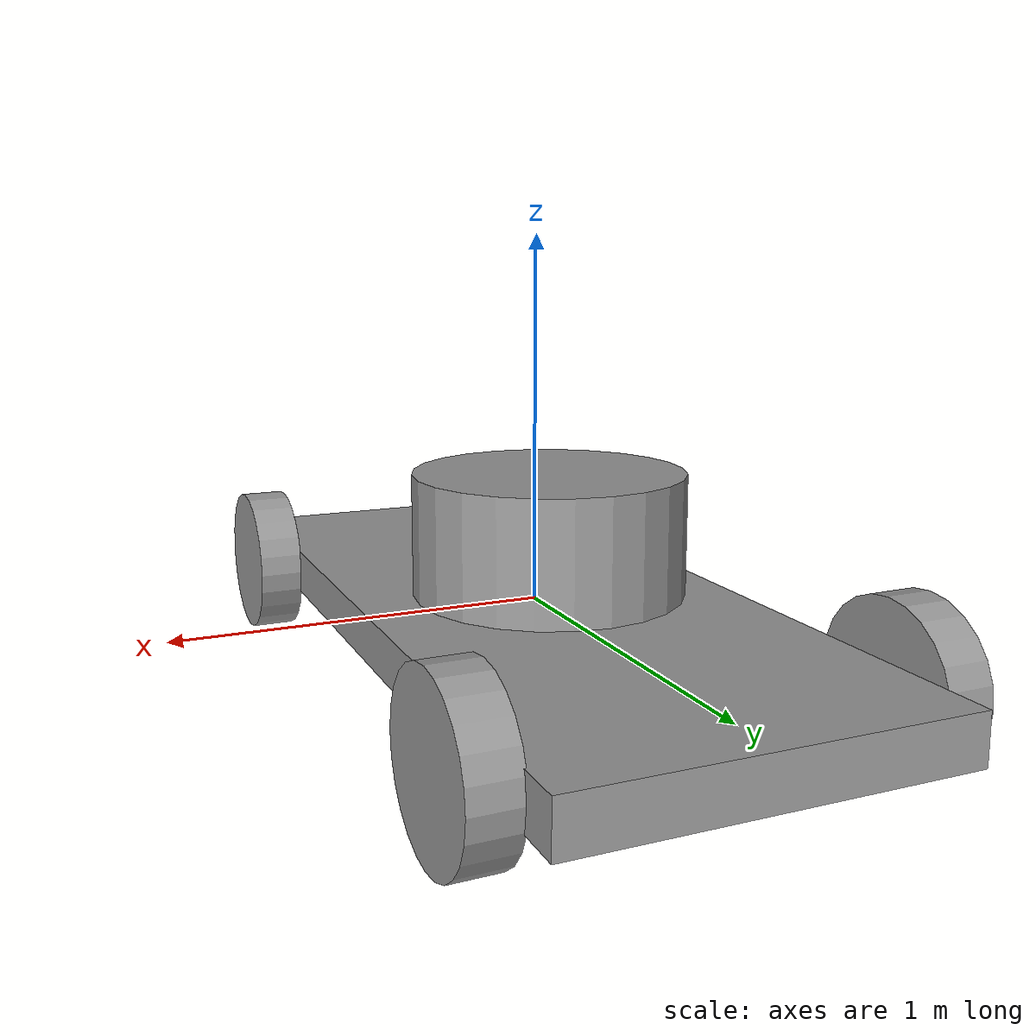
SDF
<?xml version='1.0'?>
<sdf version='1.5'>
  <model name='bfl_5_lid'>
    <link name='link_0'>
      <inertial>
        <mass>0.309481</mass>
        <inertia>
          <ixx>0.148031</ixx>
          <ixy>0</ixy>
          <ixz>0</ixz>
          <iyy>0.0262218</iyy>
          <iyz>0</iyz>
          <izz>0.17339</izz>
        </inertia>
        <pose>0 0 0 0 -0 0</pose>
      </inertial>
      <pose>0.005955 -0.002255 -0.04012 0 -0 0</pose>
      <visual name='visual'>
        <pose>0 0 0 0 -0 0</pose>
        <geometry>
          <box>
            <size>1 2.3923 0.129378</size>
          </box>
        </geometry>
        <material>
          <lighting>1</lighting>
          <script>
            <uri>file://media/materials/scripts/gazebo.material</uri>
            <name>Gazebo/Grey</name>
          </script>
          <shader type='pixel'/>
          <emissive>0 0 0 1</emissive>
        </material>
        <transparency>0</transparency>
        <cast_shadows>1</cast_shadows>
      </visual>
      <collision name='collision'>
        <laser_retro>0</laser_retro>
        <max_contacts>10</max_contacts>
        <pose>0 0 0 0 -0 0</pose>
        <geometry>
          <box>
            <size>1 2.3923 0.129378</size>
          </box>
        </geometry>
        <surface>
          <friction>
            <ode>
              <mu>1</mu>
              <mu2>1</mu2>
              <fdir1>0 0 0</fdir1>
              <slip1>0</slip1>
              <slip2>0</slip2>
            </ode>
            <torsional>
              <coefficient>1</coefficient>
              <patch_radius>0</patch_radius>
              <surface_radius>0</surface_radius>
              <use_patch_radius>1</use_patch_radius>
              <ode>
                <slip>0</slip>
              </ode>
            </torsional>
          </friction>
          <bounce>
            <restitution_coefficient>0</restitution_coefficient>
            <threshold>1e+06</threshold>
          </bounce>
          <contact>
            <collide_without_contact>0</collide_without_contact>
            <collide_without_contact_bitmask>1</collide_without_contact_bitmask>
            <collide_bitmask>1</collide_bitmask>
            <ode>
              <soft_cfm>0</soft_cfm>
              <soft_erp>0.2</soft_erp>
              <kp>1e+13</kp>
              <kd>1</kd>
              <max_vel>0.01</max_vel>
              <min_depth>0</min_depth>
            </ode>
            <bullet>
              <split_impulse>1</split_impulse>
              <split_impulse_penetration_threshold>-0.01</split_impulse_penetration_threshold>
              <soft_cfm>0</soft_cfm>
              <soft_erp>0.2</soft_erp>
              <kp>1e+13</kp>
              <kd>1</kd>
            </bullet>
          </contact>
        </surface>
      </collision>
    </link>
    <link name='link_1'>
      <inertial>
        <mass>0.0232297</mass>
        <inertia>
          <ixx>0.000300218</ixx>
          <ixy>0</ixy>
          <ixz>0</ixz>
          <iyy>0.000300218</iyy>
          <iyz>0</iyz>
          <izz>0.000540024</izz>
        </inertia>
        <pose>0 0 0 0 -0 0</pose>
      </inertial>
      <pose>-0.562429 -0.881252 -0.040123 -1.57101 -0.016559 -1.55771</pose>
      <visual name='visual'>
        <pose>0 0 0 0 -0 0</pose>
        <geometry>
          <cylinder>
            <radius>0.215626</radius>
            <length>0.124916</length>
          </cylinder>
        </geometry>
        <material>
          <lighting>1</lighting>
          <script>
            <uri>file://media/materials/scripts/gazebo.material</uri>
            <name>Gazebo/Grey</name>
          </script>
          <shader type='pixel'/>
          <emissive>0 0 0 1</emissive>
        </material>
        <transparency>0</transparency>
        <cast_shadows>1</cast_shadows>
      </visual>
      <collision name='collision'>
        <laser_retro>0</laser_retro>
        <max_contacts>10</max_contacts>
        <pose>0 0 0 0 -0 0</pose>
        <geometry>
          <cylinder>
            <radius>0.215626</radius>
            <length>0.124916</length>
          </cylinder>
        </geometry>
        <surface>
          <friction>
            <ode>
              <mu>1</mu>
              <mu2>1</mu2>
              <fdir1>0 0 0</fdir1>
              <slip1>0</slip1>
              <slip2>0</slip2>
            </ode>
            <torsional>
              <coefficient>1</coefficient>
              <patch_radius>0</patch_radius>
              <surface_radius>0</surface_radius>
              <use_patch_radius>1</use_patch_radius>
              <ode>
                <slip>0</slip>
              </ode>
            </torsional>
          </friction>
          <bounce>
            <restitution_coefficient>0</restitution_coefficient>
            <threshold>1e+06</threshold>
          </bounce>
          <contact>
            <collide_without_contact>0</collide_without_contact>
            <collide_without_contact_bitmask>1</collide_without_contact_bitmask>
            <collide_bitmask>1</collide_bitmask>
            <ode>
              <soft_cfm>0</soft_cfm>
              <soft_erp>0.2</soft_erp>
              <kp>1e+13</kp>
              <kd>1</kd>
              <max_vel>0.01</max_vel>
              <min_depth>0</min_depth>
            </ode>
            <bullet>
              <split_impulse>1</split_impulse>
              <split_impulse_penetration_threshold>-0.01</split_impulse_penetration_threshold>
              <soft_cfm>0</soft_cfm>
              <soft_erp>0.2</soft_erp>
              <kp>1e+13</kp>
              <kd>1</kd>
            </bullet>
          </contact>
        </surface>
      </collision>
    </link>
    <link name='link_1_clone'>
      <inertial>
        <mass>0.0232297</mass>
        <inertia>
          <ixx>0.000300218</ixx>
          <ixy>0</ixy>
          <ixz>0</ixz>
          <iyy>0.000300218</iyy>
          <iyz>0</iyz>
          <izz>0.000540024</izz>
        </inertia>
        <pose>0 0 0 0 -0 0</pose>
      </inertial>
      <pose>-0.560979 0.855765 -0.040126 -1.57101 -0.016559 -1.55771</pose>
      <visual name='visual'>
        <pose>0 0 0 0 -0 0</pose>
        <geometry>
          <cylinder>
            <radius>0.215626</radius>
            <length>0.124916</length>
          </cylinder>
        </geometry>
        <material>
          <lighting>1</lighting>
          <script>
            <uri>file://media/materials/scripts/gazebo.material</uri>
            <name>Gazebo/Grey</name>
          </script>
          <shader type='pixel'/>
          <emissive>0 0 0 1</emissive>
        </material>
        <transparency>0</transparency>
        <cast_shadows>1</cast_shadows>
      </visual>
      <collision name='collision'>
        <laser_retro>0</laser_retro>
        <max_contacts>10</max_contacts>
        <pose>0 0 0 0 -0 0</pose>
        <geometry>
          <cylinder>
            <radius>0.215626</radius>
            <length>0.124916</length>
          </cylinder>
        </geometry>
        <surface>
          <friction>
            <ode>
              <mu>1</mu>
              <mu2>1</mu2>
              <fdir1>0 0 0</fdir1>
              <slip1>0</slip1>
              <slip2>0</slip2>
            </ode>
            <torsional>
              <coefficient>1</coefficient>
              <patch_radius>0</patch_radius>
              <surface_radius>0</surface_radius>
              <use_patch_radius>1</use_patch_radius>
              <ode>
                <slip>0</slip>
              </ode>
            </torsional>
          </friction>
          <bounce>
            <restitution_coefficient>0</restitution_coefficient>
            <threshold>1e+06</threshold>
          </bounce>
          <contact>
            <collide_without_contact>0</collide_without_contact>
            <collide_without_contact_bitmask>1</collide_without_contact_bitmask>
            <collide_bitmask>1</collide_bitmask>
            <ode>
              <soft_cfm>0</soft_cfm>
              <soft_erp>0.2</soft_erp>
              <kp>1e+13</kp>
              <kd>1</kd>
              <max_vel>0.01</max_vel>
              <min_depth>0</min_depth>
            </ode>
            <bullet>
              <split_impulse>1</split_impulse>
              <split_impulse_penetration_threshold>-0.01</split_impulse_penetration_threshold>
              <soft_cfm>0</soft_cfm>
              <soft_erp>0.2</soft_erp>
              <kp>1e+13</kp>
              <kd>1</kd>
            </bullet>
          </contact>
        </surface>
      </collision>
    </link>
    <link name='link_1_clone_0'>
      <inertial>
        <mass>0.0232297</mass>
        <inertia>
          <ixx>0.000300218</ixx>
          <ixy>0</ixy>
          <ixz>0</ixz>
          <iyy>0.000300218</iyy>
          <iyz>0</iyz>
          <izz>0.000540024</izz>
        </inertia>
        <pose>0 0 0 0 -0 0</pose>
      </inertial>
      <pose>0.565901 0.870251 -0.041786 -1.57101 -0.016559 -1.55771</pose>
      <visual name='visual'>
        <pose>0 0 0 0 -0 0</pose>
        <geometry>
          <cylinder>
            <radius>0.215626</radius>
            <length>0.124916</length>
          </cylinder>
        </geometry>
        <material>
          <lighting>1</lighting>
          <script>
            <uri>file://media/materials/scripts/gazebo.material</uri>
            <name>Gazebo/Grey</name>
          </script>
          <shader type='pixel'/>
          <emissive>0 0 0 1</emissive>
        </material>
        <transparency>0</transparency>
        <cast_shadows>1</cast_shadows>
      </visual>
      <collision name='collision'>
        <laser_retro>0</laser_retro>
        <max_contacts>10</max_contacts>
        <pose>0 0 0 0 -0 0</pose>
        <geometry>
          <cylinder>
            <radius>0.215626</radius>
            <length>0.124916</length>
          </cylinder>
        </geometry>
        <surface>
          <friction>
            <ode>
              <mu>1</mu>
              <mu2>1</mu2>
              <fdir1>0 0 0</fdir1>
              <slip1>0</slip1>
              <slip2>0</slip2>
            </ode>
            <torsional>
              <coefficient>1</coefficient>
              <patch_radius>0</patch_radius>
              <surface_radius>0</surface_radius>
              <use_patch_radius>1</use_patch_radius>
              <ode>
                <slip>0</slip>
              </ode>
            </torsional>
          </friction>
          <bounce>
            <restitution_coefficient>0</restitution_coefficient>
            <threshold>1e+06</threshold>
          </bounce>
          <contact>
            <collide_without_contact>0</collide_without_contact>
            <collide_without_contact_bitmask>1</collide_without_contact_bitmask>
            <collide_bitmask>1</collide_bitmask>
            <ode>
              <soft_cfm>0</soft_cfm>
              <soft_erp>0.2</soft_erp>
              <kp>1e+13</kp>
              <kd>1</kd>
              <max_vel>0.01</max_vel>
              <min_depth>0</min_depth>
            </ode>
            <bullet>
              <split_impulse>1</split_impulse>
              <split_impulse_penetration_threshold>-0.01</split_impulse_penetration_threshold>
              <soft_cfm>0</soft_cfm>
              <soft_erp>0.2</soft_erp>
              <kp>1e+13</kp>
              <kd>1</kd>
            </bullet>
          </contact>
        </surface>
      </collision>
    </link>
    <link name='link_1_clone_1'>
      <inertial>
        <mass>0.0232297</mass>
        <inertia>
          <ixx>0.000300218</ixx>
          <ixy>0</ixy>
          <ixz>0</ixz>
          <iyy>0.000300218</iyy>
          <iyz>0</iyz>
          <izz>0.000540024</izz>
        </inertia>
        <pose>0 0 0 0 -0 0</pose>
      </inertial>
      <pose>0.569438 -0.891527 -0.037757 -1.57101 -0.016559 -1.55771</pose>
      <visual name='visual'>
        <pose>0 0 0 0 -0 0</pose>
        <geometry>
          <cylinder>
            <radius>0.215626</radius>
            <length>0.124916</length>
          </cylinder>
        </geometry>
        <material>
          <lighting>1</lighting>
          <script>
            <uri>file://media/materials/scripts/gazebo.material</uri>
            <name>Gazebo/Grey</name>
          </script>
          <shader type='pixel'/>
          <emissive>0 0 0 1</emissive>
        </material>
        <transparency>0</transparency>
        <cast_shadows>1</cast_shadows>
      </visual>
      <collision name='collision'>
        <laser_retro>0</laser_retro>
        <max_contacts>10</max_contacts>
        <pose>0 0 0 0 -0 0</pose>
        <geometry>
          <cylinder>
            <radius>0.215626</radius>
            <length>0.124916</length>
          </cylinder>
        </geometry>
        <surface>
          <friction>
            <ode>
              <mu>1</mu>
              <mu2>1</mu2>
              <fdir1>0 0 0</fdir1>
              <slip1>0</slip1>
              <slip2>0</slip2>
            </ode>
            <torsional>
              <coefficient>1</coefficient>
              <patch_radius>0</patch_radius>
              <surface_radius>0</surface_radius>
              <use_patch_radius>1</use_patch_radius>
              <ode>
                <slip>0</slip>
              </ode>
            </torsional>
          </friction>
          <bounce>
            <restitution_coefficient>0</restitution_coefficient>
            <threshold>1e+06</threshold>
          </bounce>
          <contact>
            <collide_without_contact>0</collide_without_contact>
            <collide_without_contact_bitmask>1</collide_without_contact_bitmask>
            <collide_bitmask>1</collide_bitmask>
            <ode>
              <soft_cfm>0</soft_cfm>
              <soft_erp>0.2</soft_erp>
              <kp>1e+13</kp>
              <kd>1</kd>
              <max_vel>0.01</max_vel>
              <min_depth>0</min_depth>
            </ode>
            <bullet>
              <split_impulse>1</split_impulse>
              <split_impulse_penetration_threshold>-0.01</split_impulse_penetration_threshold>
              <soft_cfm>0</soft_cfm>
              <soft_erp>0.2</soft_erp>
              <kp>1e+13</kp>
              <kd>1</kd>
            </bullet>
          </contact>
        </surface>
      </collision>
    </link>
    <link name='link_2'>
      <inertial>
        <mass>0.1868</mass>
        <inertia>
          <ixx>0.00826764</ixx>
          <ixy>0</ixy>
          <ixz>0</ixz>
          <iyy>0.00826764</iyy>
          <iyz>0</iyz>
          <izz>0.013065</izz>
        </inertia>
        <pose>0 0 0 0 -0 0</pose>
      </inertial>
      <pose>-0.017887 0.049022 0.199912 0 -0 0</pose>
      <visual name='visual'>
        <pose>0 0 0 0 -0 0</pose>
        <geometry>
          <cylinder>
            <radius>0.374009</radius>
            <length>0.333864</length>
          </cylinder>
        </geometry>
        <material>
          <lighting>1</lighting>
          <script>
            <uri>file://media/materials/scripts/gazebo.material</uri>
            <name>Gazebo/Grey</name>
          </script>
          <shader type='pixel'/>
          <emissive>0 0 0 1</emissive>
        </material>
        <transparency>0</transparency>
        <cast_shadows>1</cast_shadows>
      </visual>
      <collision name='collision'>
        <laser_retro>0</laser_retro>
        <max_contacts>10</max_contacts>
        <pose>0 0 0 0 -0 0</pose>
        <geometry>
          <cylinder>
            <radius>0.374009</radius>
            <length>0.333864</length>
          </cylinder>
        </geometry>
        <surface>
          <friction>
            <ode>
              <mu>1</mu>
              <mu2>1</mu2>
              <fdir1>0 0 0</fdir1>
              <slip1>0</slip1>
              <slip2>0</slip2>
            </ode>
            <torsional>
              <coefficient>1</coefficient>
              <patch_radius>0</patch_radius>
              <surface_radius>0</surface_radius>
              <use_patch_radius>1</use_patch_radius>
              <ode>
                <slip>0</slip>
              </ode>
            </torsional>
          </friction>
          <bounce>
            <restitution_coefficient>0</restitution_coefficient>
            <threshold>1e+06</threshold>
          </bounce>
          <contact>
            <collide_without_contact>0</collide_without_contact>
            <collide_without_contact_bitmask>1</collide_without_contact_bitmask>
            <collide_bitmask>1</collide_bitmask>
            <ode>
              <soft_cfm>0</soft_cfm>
              <soft_erp>0.2</soft_erp>
              <kp>1e+13</kp>
              <kd>1</kd>
              <max_vel>0.01</max_vel>
              <min_depth>0</min_depth>
            </ode>
            <bullet>
              <split_impulse>1</split_impulse>
              <split_impulse_penetration_threshold>-0.01</split_impulse_penetration_threshold>
              <soft_cfm>0</soft_cfm>
              <soft_erp>0.2</soft_erp>
              <kp>1e+13</kp>
              <kd>1</kd>
            </bullet>
          </contact>
        </surface>
      </collision>
    </link>
    <joint name='link_0_JOINT_0' type='revolute'>
      <parent>link_0</parent>
      <child>link_1</child>
      <pose>0 0 0 0 -0 0</pose>
      <axis>
        <xyz>0 0 1</xyz>
        <limit>
          <lower>-1.79769e+308</lower>
          <upper>1.79769e+308</upper>
          <effort>-1</effort>
          <velocity>-1</velocity>
        </limit>
        <dynamics>
          <spring_reference>0</spring_reference>
          <spring_stiffness>0</spring_stiffness>
          <damping>0</damping>
        </dynamics>
      </axis>
      <physics>
        <ode>
          <limit>
            <cfm>0</cfm>
            <erp>0.2</erp>
          </limit>
          <suspension>
            <cfm>0</cfm>
            <erp>0.2</erp>
          </suspension>
        </ode>
      </physics>
    </joint>
    <joint name='link_0_JOINT_1' type='revolute'>
      <parent>link_0</parent>
      <child>link_1_clone_1</child>
      <pose>0 0 0 0 -0 0</pose>
      <axis>
        <xyz>0 0 1</xyz>
        <limit>
          <lower>-1.79769e+308</lower>
          <upper>1.79769e+308</upper>
          <effort>-1</effort>
          <velocity>-1</velocity>
        </limit>
        <dynamics>
          <spring_reference>0</spring_reference>
          <spring_stiffness>0</spring_stiffness>
          <damping>0</damping>
        </dynamics>
      </axis>
      <physics>
        <ode>
          <limit>
            <cfm>0</cfm>
            <erp>0.2</erp>
          </limit>
          <suspension>
            <cfm>0</cfm>
            <erp>0.2</erp>
          </suspension>
        </ode>
      </physics>
    </joint>
    <joint name='link_0_JOINT_2' type='revolute'>
      <parent>link_0</parent>
      <child>link_1_clone</child>
      <pose>0 0 0 0 -0 0</pose>
      <axis>
        <xyz>0 0 1</xyz>
        <limit>
          <lower>-1.79769e+308</lower>
          <upper>1.79769e+308</upper>
          <effort>-1</effort>
          <velocity>-1</velocity>
        </limit>
        <dynamics>
          <spring_reference>0</spring_reference>
          <spring_stiffness>0</spring_stiffness>
          <damping>0</damping>
        </dynamics>
      </axis>
      <physics>
        <ode>
          <limit>
            <cfm>0</cfm>
            <erp>0.2</erp>
          </limit>
          <suspension>
            <cfm>0</cfm>
            <erp>0.2</erp>
          </suspension>
        </ode>
      </physics>
    </joint>
    <joint name='link_0_JOINT_3' type='revolute'>
      <parent>link_0</parent>
      <child>link_1_clone_0</child>
      <pose>0 0 0 0 -0 0</pose>
      <axis>
        <xyz>0 0 1</xyz>
        <limit>
          <lower>-1.79769e+308</lower>
          <upper>1.79769e+308</upper>
          <effort>-1</effort>
          <velocity>-1</velocity>
        </limit>
        <dynamics>
          <spring_reference>0</spring_reference>
          <spring_stiffness>0</spring_stiffness>
          <damping>0</damping>
        </dynamics>
      </axis>
      <physics>
        <ode>
          <limit>
            <cfm>0</cfm>
            <erp>0.2</erp>
          </limit>
          <suspension>
            <cfm>0</cfm>
            <erp>0.2</erp>
          </suspension>
        </ode>
      </physics>
    </joint>
    <joint name='link_0_JOINT_4' type='fixed'>
      <parent>link_0</parent>
      <child>link_2</child>
      <pose>0 0 0 0 -0 0</pose>
      <physics>
        <ode>
          <limit>
            <cfm>0</cfm>
            <erp>0.2</erp>
          </limit>
          <suspension>
            <cfm>0</cfm>
            <erp>0.2</erp>
          </suspension>
        </ode>
      </physics>
    </joint>
    <static>0</static>
    <allow_auto_disable>1</allow_auto_disable>
  </model>
</sdf>
